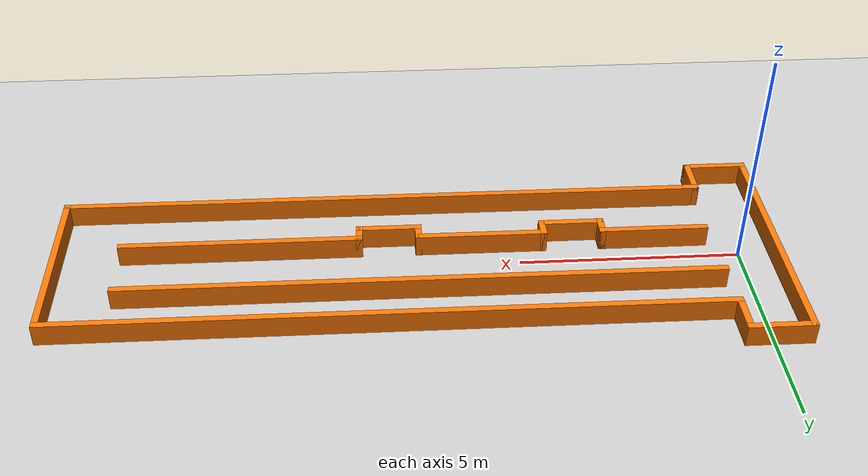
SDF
<sdf version="1.7">
 <world name="default">
  <light name="sun" type="directional">
   <pose>0 0 10 0 -0 0</pose>
   <diffuse>0.8 0.8 0.8 1</diffuse>
   <specular>0.2 0.2 0.2 1</specular>
   <attenuation>
    <range>1000</range>
    <constant>0.9</constant>
    <linear>0.01</linear>
    <quadratic>0.001</quadratic>
   </attenuation>
   <direction>-0.5 0.1 -0.9</direction>
   <spot><inner_angle>0</inner_angle><outer_angle>0</outer_angle><falloff>0</falloff></spot>
  </light>
  <model name="ground_plane">
   <static>1</static>
   <link name="link">
    <collision name="collision">
     <geometry><plane><normal>0 0 1</normal><size>100 100</size></plane></geometry>
     <surface>
      <contact><collide_bitmask>65535</collide_bitmask></contact>
      <friction><ode><mu>100</mu><mu2>50</mu2></ode></friction>
     </surface>
    </collision>
    <visual name="visual">
     <cast_shadows>0</cast_shadows>
     <geometry><plane><normal>0 0 1</normal><size>100 100</size></plane></geometry>
     <material>
      <script><uri>file://media/materials/scripts/gazebo.material</uri><name>Gazebo/Grey</name></script>
     </material>
    </visual>
   </link>
  </model>
  <gravity>0 0 -9.8</gravity>
  <magnetic_field>6e-06 2.3e-05 -4.2e-05</magnetic_field>
  <atmosphere type="adiabatic"/>
  <physics type="ode">
   <max_step_size>0.001</max_step_size>
   <real_time_factor>1</real_time_factor>
   <real_time_update_rate>1000</real_time_update_rate>
  </physics>
  <scene><ambient>0.4 0.4 0.4 1</ambient><background>0.7 0.7 0.7 1</background><shadows>1</shadows></scene>
  <spherical_coordinates>
   <surface_model>EARTH_WGS84</surface_model>
   <latitude_deg>0</latitude_deg>
   <longitude_deg>0</longitude_deg>
   <elevation>0</elevation>
   <heading_deg>0</heading_deg>
  </spherical_coordinates>
  <model name="corridor828">
   <pose>7.32409 -1.31339 0 0 -0 0</pose>
   <link name="Wall_10">
    <collision name="Wall_10_Collision">
     <geometry><box><size>15 0.15 0.5</size></box></geometry>
     <pose>0 0 0.25 0 -0 0</pose>
    </collision>
    <visual name="Wall_10_Visual">
     <pose>0 0 0.25 0 -0 0</pose>
     <geometry><box><size>15 0.15 0.5</size></box></geometry>
     <material>
      <script><uri>file://media/materials/scripts/gazebo.material</uri><name>Gazebo/Grey</name></script>
      <ambient>0.996078 0.47451 0.0196078 1</ambient>
     </material>
     <meta><layer>0</layer></meta>
    </visual>
    <pose>0.675 3.4035 0 0 -0 0</pose>
   </link>
   <link name="Wall_11">
    <collision name="Wall_11_Collision">
     <geometry><box><size>4.3 0.15 0.5</size></box></geometry>
     <pose>0 0 0.25 0 -0 0</pose>
    </collision>
    <visual name="Wall_11_Visual">
     <pose>0 0 0.25 0 -0 0</pose>
     <geometry><box><size>4.3 0.15 0.5</size></box></geometry>
     <material>
      <script><uri>file://media/materials/scripts/gazebo.material</uri><name>Gazebo/Grey</name></script>
      <ambient>0.996078 0.47451 0.0196078 1</ambient>
     </material>
     <meta><layer>0</layer></meta>
    </visual>
    <pose>8.1 1.3285 0 0 -0 -1.5708</pose>
   </link>
   <link name="Wall_13">
    <collision name="Wall_13_Collision">
     <geometry><box><size>13.5 0.15 0.5</size></box></geometry>
     <pose>0 0 0.25 0 -0 0</pose>
    </collision>
    <visual name="Wall_13_Visual">
     <pose>0 0 0.25 0 -0 0</pose>
     <geometry><box><size>13.5 0.15 0.5</size></box></geometry>
     <material>
      <script><uri>file://media/materials/scripts/gazebo.material</uri><name>Gazebo/Grey</name></script>
      <ambient>0.996078 0.47451 0.0196078 1</ambient>
     </material>
     <meta><layer>0</layer></meta>
    </visual>
    <pose>-0.026 2.3305 0 0 -0 0</pose>
   </link>
   <link name="Wall_15">
    <collision name="Wall_15_Collision">
     <geometry><box><size>2.5 0.15 0.5</size></box></geometry>
     <pose>0 0 0.25 0 -0 0</pose>
    </collision>
    <visual name="Wall_15_Visual">
     <pose>0 0 0.25 0 -0 0</pose>
     <geometry><box><size>2.5 0.15 0.5</size></box></geometry>
     <material>
      <script><uri>file://media/materials/scripts/gazebo.material</uri><name>Gazebo/Grey</name></script>
      <ambient>0.996078 0.47451 0.0196078 1</ambient>
     </material>
     <meta><layer>0</layer></meta>
    </visual>
    <pose>-5.421 0.8255 0 0 -0 0</pose>
   </link>
   <link name="Wall_16">
    <collision name="Wall_16_Collision">
     <geometry><box><size>0.5 0.15 0.5</size></box></geometry>
     <pose>0 0 0.25 0 -0 0</pose>
    </collision>
    <visual name="Wall_16_Visual">
     <pose>0 0 0.25 0 -0 0</pose>
     <geometry><box><size>0.5 0.15 0.5</size></box></geometry>
     <material>
      <script><uri>file://media/materials/scripts/gazebo.material</uri><name>Gazebo/Grey</name></script>
      <ambient>0.996078 0.47451 0.0196078 1</ambient>
     </material>
     <meta><layer>0</layer></meta>
    </visual>
    <pose>-4.246 0.6505 0 0 -0 -1.5708</pose>
   </link>
   <link name="Wall_17">
    <collision name="Wall_17_Collision">
     <geometry><box><size>1.5 0.15 0.5</size></box></geometry>
     <pose>0 0 0.25 0 -0 0</pose>
    </collision>
    <visual name="Wall_17_Visual">
     <pose>0 0 0.25 0 -0 0</pose>
     <geometry><box><size>1.5 0.15 0.5</size></box></geometry>
     <material>
      <script><uri>file://media/materials/scripts/gazebo.material</uri><name>Gazebo/Grey</name></script>
      <ambient>0.996078 0.47451 0.0196078 1</ambient>
     </material>
     <meta><layer>0</layer></meta>
    </visual>
    <pose>-3.571 0.4755 0 0 -0 0</pose>
   </link>
   <link name="Wall_20">
    <collision name="Wall_20_Collision">
     <geometry><box><size>0.5 0.15 0.5</size></box></geometry>
     <pose>0 0 0.25 0 -0 0</pose>
    </collision>
    <visual name="Wall_20_Visual">
     <pose>0 0 0.25 0 -0 0</pose>
     <geometry><box><size>0.5 0.15 0.5</size></box></geometry>
     <material>
      <script><uri>file://media/materials/scripts/gazebo.material</uri><name>Gazebo/Grey</name></script>
      <ambient>0.996078 0.47451 0.0196078 1</ambient>
     </material>
     <meta><layer>0</layer></meta>
    </visual>
    <pose>-2.896 0.6505 0 0 -0 1.5708</pose>
   </link>
   <link name="Wall_21">
    <collision name="Wall_21_Collision">
     <geometry><box><size>3 0.15 0.5</size></box></geometry>
     <pose>0 0 0.25 0 -0 0</pose>
    </collision>
    <visual name="Wall_21_Visual">
     <pose>0 0 0.25 0 -0 0</pose>
     <geometry><box><size>3 0.15 0.5</size></box></geometry>
     <material>
      <script><uri>file://media/materials/scripts/gazebo.material</uri><name>Gazebo/Grey</name></script>
      <ambient>0.996078 0.47451 0.0196078 1</ambient>
     </material>
     <meta><layer>0</layer></meta>
    </visual>
    <pose>-1.471 0.8255 0 0 -0 0</pose>
   </link>
   <link name="Wall_24">
    <collision name="Wall_24_Collision">
     <geometry><box><size>0.5 0.15 0.5</size></box></geometry>
     <pose>0 0 0.25 0 -0 0</pose>
    </collision>
    <visual name="Wall_24_Visual">
     <pose>0 0 0.25 0 -0 0</pose>
     <geometry><box><size>0.5 0.15 0.5</size></box></geometry>
     <material>
      <script><uri>file://media/materials/scripts/gazebo.material</uri><name>Gazebo/Grey</name></script>
      <ambient>0.996078 0.47451 0.0196078 1</ambient>
     </material>
     <meta><layer>0</layer></meta>
    </visual>
    <pose>-0.046 0.6505 0 0 -0 -1.5708</pose>
   </link>
   <link name="Wall_27">
    <collision name="Wall_27_Collision">
     <geometry><box><size>1.5 0.15 0.5</size></box></geometry>
     <pose>0 0 0.25 0 -0 0</pose>
    </collision>
    <visual name="Wall_27_Visual">
     <pose>0 0 0.25 0 -0 0</pose>
     <geometry><box><size>1.5 0.15 0.5</size></box></geometry>
     <material>
      <script><uri>file://media/materials/scripts/gazebo.material</uri><name>Gazebo/Grey</name></script>
      <ambient>0.996078 0.47451 0.0196078 1</ambient>
     </material>
     <meta><layer>0</layer></meta>
    </visual>
    <pose>0.629 0.4755 0 0 -0 0</pose>
   </link>
   <link name="Wall_28">
    <collision name="Wall_28_Collision">
     <geometry><box><size>0.5 0.15 0.5</size></box></geometry>
     <pose>0 0 0.25 0 -0 0</pose>
    </collision>
    <visual name="Wall_28_Visual">
     <pose>0 0 0.25 0 -0 0</pose>
     <geometry><box><size>0.5 0.15 0.5</size></box></geometry>
     <material>
      <script><uri>file://media/materials/scripts/gazebo.material</uri><name>Gazebo/Grey</name></script>
      <ambient>0.996078 0.47451 0.0196078 1</ambient>
     </material>
     <meta><layer>0</layer></meta>
    </visual>
    <pose>1.304 0.6505 0 0 -0 1.5708</pose>
   </link>
   <link name="Wall_29">
    <collision name="Wall_29_Collision">
     <geometry><box><size>5.5 0.15 0.5</size></box></geometry>
     <pose>0 0 0.25 0 -0 0</pose>
    </collision>
    <visual name="Wall_29_Visual">
     <pose>0 0 0.25 0 -0 0</pose>
     <geometry><box><size>5.5 0.15 0.5</size></box></geometry>
     <material>
      <script><uri>file://media/materials/scripts/gazebo.material</uri><name>Gazebo/Grey</name></script>
      <ambient>0.996078 0.47451 0.0196078 1</ambient>
     </material>
     <meta><layer>0</layer></meta>
    </visual>
    <pose>3.979 0.8255 0 0 -0 0</pose>
   </link>
   <link name="Wall_3">
    <collision name="Wall_3_Collision">
     <geometry><box><size>6 0.15 0.5</size></box></geometry>
     <pose>0 0 0.25 0 -0 0</pose>
    </collision>
    <visual name="Wall_3_Visual">
     <pose>0 0 0.25 0 -0 0</pose>
     <geometry><box><size>6 0.15 0.5</size></box></geometry>
     <material>
      <script><uri>file://media/materials/scripts/gazebo.material</uri><name>Gazebo/Grey</name></script>
      <ambient>0.996078 0.47451 0.0196078 1</ambient>
     </material>
     <meta><layer>0</layer></meta>
    </visual>
    <pose>-8.1 1.3285 0 0 -0 -1.5708</pose>
   </link>
   <link name="Wall_4">
    <collision name="Wall_4_Collision">
     <geometry><box><size>1.5 0.15 0.5</size></box></geometry>
     <pose>0 0 0.25 0 -0 0</pose>
    </collision>
    <visual name="Wall_4_Visual">
     <pose>0 0 0.25 0 -0 0</pose>
     <geometry><box><size>1.5 0.15 0.5</size></box></geometry>
     <material>
      <script><uri>file://media/materials/scripts/gazebo.material</uri><name>Gazebo/Grey</name></script>
      <ambient>0.996078 0.47451 0.0196078 1</ambient>
     </material>
     <meta><layer>0</layer></meta>
    </visual>
    <pose>-7.425 -1.5965 0 0 -0 0</pose>
   </link>
   <link name="Wall_5">
    <collision name="Wall_5_Collision">
     <geometry><box><size>1 0.15 0.5</size></box></geometry>
     <pose>0 0 0.25 0 -0 0</pose>
    </collision>
    <visual name="Wall_5_Visual">
     <pose>0 0 0.25 0 -0 0</pose>
     <geometry><box><size>1 0.15 0.5</size></box></geometry>
     <material>
      <script><uri>file://media/materials/scripts/gazebo.material</uri><name>Gazebo/Grey</name></script>
      <ambient>0.996078 0.47451 0.0196078 1</ambient>
     </material>
     <meta><layer>0</layer></meta>
    </visual>
    <pose>-6.75 -1.1715 0 0 -0 1.5708</pose>
   </link>
   <link name="Wall_6">
    <collision name="Wall_6_Collision">
     <geometry><box><size>15 0.15 0.5</size></box></geometry>
     <pose>0 0 0.25 0 -0 0</pose>
    </collision>
    <visual name="Wall_6_Visual">
     <pose>0 0 0.25 0 -0 0</pose>
     <geometry><box><size>15 0.15 0.5</size></box></geometry>
     <material>
      <script><uri>file://media/materials/scripts/gazebo.material</uri><name>Gazebo/Grey</name></script>
      <ambient>0.996078 0.47451 0.0196078 1</ambient>
     </material>
     <meta><layer>0</layer></meta>
    </visual>
    <pose>0.675 -0.7465 0 0 -0 0</pose>
   </link>
   <link name="Wall_8">
    <collision name="Wall_8_Collision">
     <geometry><box><size>1.5 0.15 0.5</size></box></geometry>
     <pose>0 0 0.25 0 -0 0</pose>
    </collision>
    <visual name="Wall_8_Visual">
     <pose>0 0 0.25 0 -0 0</pose>
     <geometry><box><size>1.5 0.15 0.5</size></box></geometry>
     <material>
      <script><uri>file://media/materials/scripts/gazebo.material</uri><name>Gazebo/Grey</name></script>
      <ambient>0.996078 0.47451 0.0196078 1</ambient>
     </material>
     <meta><layer>0</layer></meta>
    </visual>
    <pose>-7.425 4.2535 0 0 -0 0</pose>
   </link>
   <link name="Wall_9">
    <collision name="Wall_9_Collision">
     <geometry><box><size>1 0.15 0.5</size></box></geometry>
     <pose>0 0 0.25 0 -0 0</pose>
    </collision>
    <visual name="Wall_9_Visual">
     <pose>0 0 0.25 0 -0 0</pose>
     <geometry><box><size>1 0.15 0.5</size></box></geometry>
     <material>
      <script><uri>file://media/materials/scripts/gazebo.material</uri><name>Gazebo/Grey</name></script>
      <ambient>0.996078 0.47451 0.0196078 1</ambient>
     </material>
     <meta><layer>0</layer></meta>
    </visual>
    <pose>-6.75 3.8285 0 0 -0 -1.5708</pose>
   </link>
   <static>1</static>
  </model>
 </world>
</sdf>
